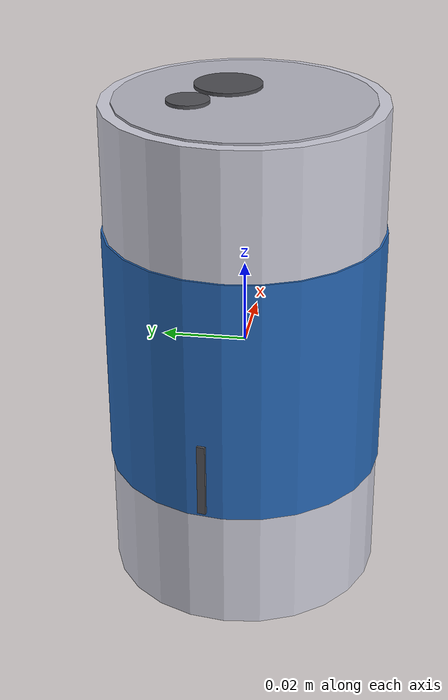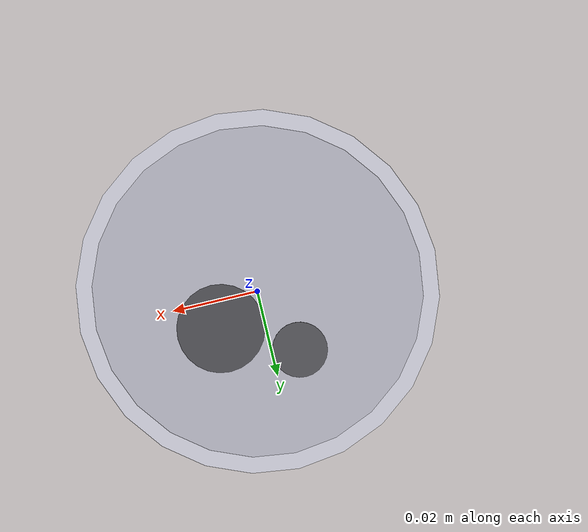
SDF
<?xml version="1.0" ?>
<!--
  Dented Can Model

  Damaged aluminum beverage can with visible dent.
  The dent is shown as a darker discolored area on the side.
-->
<sdf version="1.9">
  <model name="can_dented">
    <static>false</static>

    <link name="body">
      <kinematic>true</kinematic>

      <!-- Main can body -->
      <visual name="can_body">
        <geometry>
          <cylinder>
            <radius>0.033</radius>
            <length>0.12</length>
          </cylinder>
        </geometry>
        <material>
          <ambient>0.7 0.7 0.75 1</ambient>
          <diffuse>0.8 0.8 0.85 1</diffuse>
          <specular>0.9 0.9 0.9 1</specular>
          <pbr>
            <metal>
              <metalness>0.9</metalness>
              <roughness>0.3</roughness>
            </metal>
          </pbr>
        </material>
      </visual>

      <!-- Top lid -->
      <visual name="top_lid">
        <pose>0 0 0.059 0 0 0</pose>
        <geometry>
          <cylinder>
            <radius>0.030</radius>
            <length>0.003</length>
          </cylinder>
        </geometry>
        <material>
          <ambient>0.6 0.6 0.65 1</ambient>
          <diffuse>0.7 0.7 0.75 1</diffuse>
          <specular>0.85 0.85 0.85 1</specular>
          <pbr>
            <metal>
              <metalness>0.95</metalness>
              <roughness>0.2</roughness>
            </metal>
          </pbr>
        </material>
      </visual>

      <!-- Damage mark on top - flat dark disk on lid surface -->
      <visual name="top_damage">
        <pose>0.008 0.005 0.0608 0 0 0</pose>
        <geometry>
          <cylinder>
            <radius>0.008</radius>
            <length>0.001</length>
          </cylinder>
        </geometry>
        <material>
          <ambient>0.2 0.2 0.22 1</ambient>
          <diffuse>0.3 0.3 0.32 1</diffuse>
          <specular>0.2 0.2 0.2 1</specular>
          <pbr>
            <metal>
              <metalness>0.6</metalness>
              <roughness>0.8</roughness>
            </metal>
          </pbr>
        </material>
      </visual>

      <!-- Second damage mark - smaller dark disk -->
      <visual name="top_damage2">
        <pose>-0.005 0.012 0.0608 0 0 0</pose>
        <geometry>
          <cylinder>
            <radius>0.005</radius>
            <length>0.001</length>
          </cylinder>
        </geometry>
        <material>
          <ambient>0.22 0.22 0.24 1</ambient>
          <diffuse>0.32 0.32 0.34 1</diffuse>
          <specular>0.2 0.2 0.2 1</specular>
          <pbr>
            <metal>
              <metalness>0.6</metalness>
              <roughness>0.75</roughness>
            </metal>
          </pbr>
        </material>
      </visual>

      <!-- Bottom -->
      <visual name="bottom">
        <pose>0 0 -0.059 0 0 0</pose>
        <geometry>
          <cylinder>
            <radius>0.030</radius>
            <length>0.003</length>
          </cylinder>
        </geometry>
        <material>
          <ambient>0.6 0.6 0.65 1</ambient>
          <diffuse>0.7 0.7 0.75 1</diffuse>
          <specular>0.85 0.85 0.85 1</specular>
          <pbr>
            <metal>
              <metalness>0.95</metalness>
              <roughness>0.2</roughness>
            </metal>
          </pbr>
        </material>
      </visual>

      <!-- Label band (colored stripe) -->
      <visual name="label">
        <pose>0 0 0 0 0 0</pose>
        <geometry>
          <cylinder>
            <radius>0.0335</radius>
            <length>0.06</length>
          </cylinder>
        </geometry>
        <material>
          <ambient>0.1 0.3 0.6 1</ambient>
          <diffuse>0.15 0.4 0.7 1</diffuse>
          <specular>0.3 0.3 0.3 1</specular>
          <pbr>
            <metal>
              <metalness>0.1</metalness>
              <roughness>0.5</roughness>
            </metal>
          </pbr>
        </material>
      </visual>

      <!-- Scratch/crease on side - thin dark line -->
      <visual name="dent">
        <pose>0.0335 0 0.01 0 1.5708 0.3</pose>
        <geometry>
          <box>
            <size>0.025 0.003 0.001</size>
          </box>
        </geometry>
        <material>
          <ambient>0.2 0.2 0.22 1</ambient>
          <diffuse>0.3 0.3 0.32 1</diffuse>
          <specular>0.2 0.2 0.2 1</specular>
          <pbr>
            <metal>
              <metalness>0.6</metalness>
              <roughness>0.8</roughness>
            </metal>
          </pbr>
        </material>
      </visual>

      <!-- Second scratch mark -->
      <visual name="dent2">
        <pose>-0.033 0.005 -0.02 0 1.5708 -0.2</pose>
        <geometry>
          <box>
            <size>0.018 0.002 0.001</size>
          </box>
        </geometry>
        <material>
          <ambient>0.22 0.22 0.24 1</ambient>
          <diffuse>0.32 0.32 0.34 1</diffuse>
          <specular>0.2 0.2 0.2 1</specular>
          <pbr>
            <metal>
              <metalness>0.6</metalness>
              <roughness>0.75</roughness>
            </metal>
          </pbr>
        </material>
      </visual>

      <collision name="collision">
        <geometry>
          <cylinder>
            <radius>0.033</radius>
            <length>0.12</length>
          </cylinder>
        </geometry>
        <surface>
          <friction>
            <ode>
              <mu>0.5</mu>
              <mu2>0.5</mu2>
            </ode>
          </friction>
        </surface>
      </collision>
    </link>
  </model>
</sdf>
